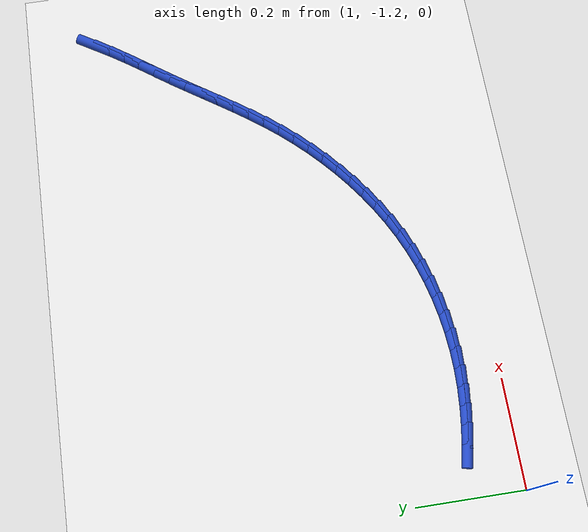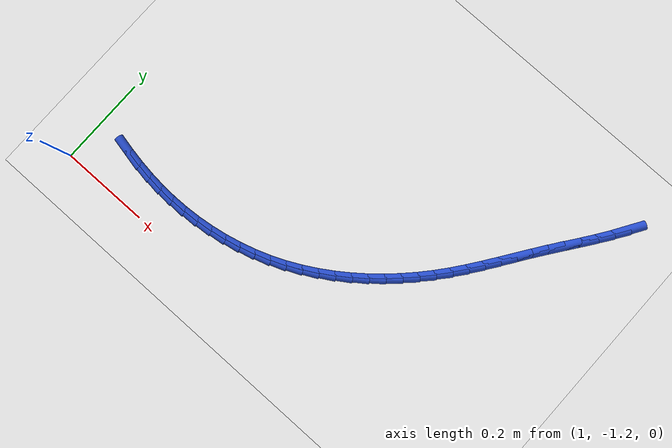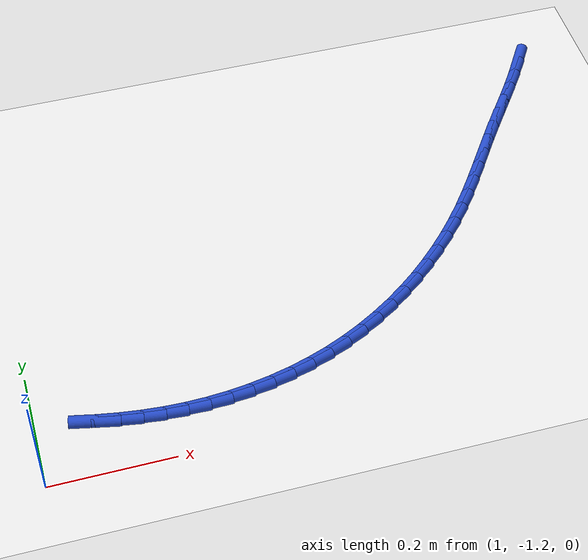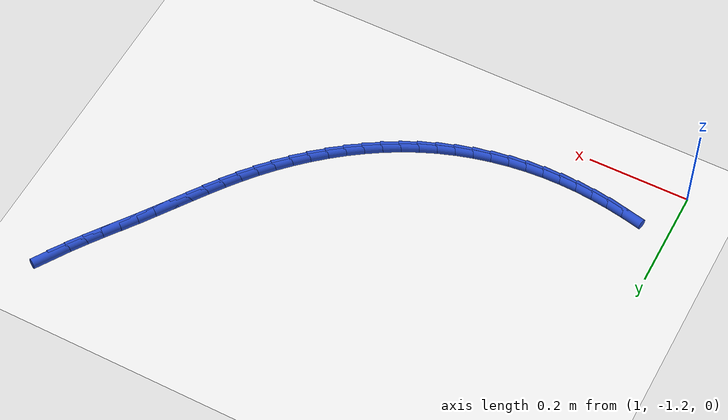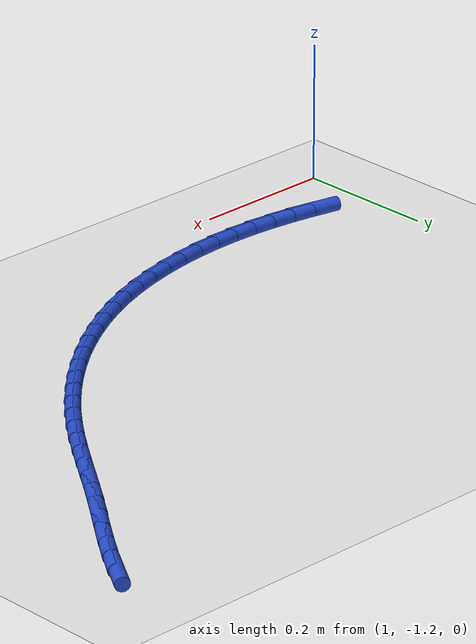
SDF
<sdf version="1.6">
 <world name="default">
  <model name="ground_plane">
   <static>1</static>
   <link name="link">
    <collision name="collision">
     <geometry><plane><normal>0 0 1</normal><size>100 100</size></plane></geometry>
     <surface><friction><ode><mu>100</mu><mu2>50</mu2></ode></friction></surface>
    </collision>
    <visual name="visual">
     <cast_shadows>0</cast_shadows>
     <geometry><plane><normal>0 0 1</normal><size>100 100</size></plane></geometry>
     <material>
      <script><uri>file://media/materials/scripts/gazebo.material</uri><name>Gazebo/WhiteGlow</name></script>
     </material>
    </visual>
   </link>
  </model>
  <model name="line">
   <link name="link_118">
    <pose>1.9889251273976312 -0.5340199341099804 0.01 0 1.57 1.0106707011554092</pose>
    <collision name="collision">
     <geometry><cylinder><radius>0.01</radius><length>0.08</length></cylinder></geometry>
    </collision>
    <visual name="visual">
     <material>
      <script><name>Gazebo/Blue</name><uri>file://media/materials/scripts/gazebo.material</uri></script>
     </material>
     <geometry><cylinder><radius>0.01</radius><length>0.08</length></cylinder></geometry>
    </visual>
   </link>
   <link name="link_119">
    <pose>1.9704287395510902 -0.5635138962584318 0.01 0 1.57 0.9747530778673968</pose>
    <collision name="collision">
     <geometry><cylinder><radius>0.01</radius><length>0.08</length></cylinder></geometry>
    </collision>
    <visual name="visual">
     <material>
      <script><name>Gazebo/Blue</name><uri>file://media/materials/scripts/gazebo.material</uri></script>
     </material>
     <geometry><cylinder><radius>0.01</radius><length>0.08</length></cylinder></geometry>
    </visual>
   </link>
   <link name="link_120">
    <pose>1.9505896850084274 -0.5927602093816582 0.01 0 1.57 0.9520366843837772</pose>
    <collision name="collision">
     <geometry><cylinder><radius>0.01</radius><length>0.08</length></cylinder></geometry>
    </collision>
    <visual name="visual">
     <material>
      <script><name>Gazebo/Blue</name><uri>file://media/materials/scripts/gazebo.material</uri></script>
     </material>
     <geometry><cylinder><radius>0.01</radius><length>0.08</length></cylinder></geometry>
    </visual>
   </link>
   <link name="link_121">
    <pose>1.9298991941028483 -0.6218183311903659 0.01 0 1.57 0.9417481838617856</pose>
    <collision name="collision">
     <geometry><cylinder><radius>0.01</radius><length>0.08</length></cylinder></geometry>
    </collision>
    <visual name="visual">
     <material>
      <script><name>Gazebo/Blue</name><uri>file://media/materials/scripts/gazebo.material</uri></script>
     </material>
     <geometry><cylinder><radius>0.01</radius><length>0.08</length></cylinder></geometry>
    </visual>
   </link>
   <link name="link_122">
    <pose>1.9088484971675541 -0.6507477193952603 0.01 0 1.57 0.9435769165240928</pose>
    <collision name="collision">
     <geometry><cylinder><radius>0.01</radius><length>0.08</length></cylinder></geometry>
    </collision>
    <visual name="visual">
     <material>
      <script><name>Gazebo/Blue</name><uri>file://media/materials/scripts/gazebo.material</uri></script>
     </material>
     <geometry><cylinder><radius>0.01</radius><length>0.08</length></cylinder></geometry>
    </visual>
   </link>
   <link name="link_123">
    <pose>1.8879288245357504 -0.6796078317070477 0.01 0 1.57 0.9564338454470598</pose>
    <collision name="collision">
     <geometry><cylinder><radius>0.01</radius><length>0.08</length></cylinder></geometry>
    </collision>
    <visual name="visual">
     <material>
      <script><name>Gazebo/Blue</name><uri>file://media/materials/scripts/gazebo.material</uri></script>
     </material>
     <geometry><cylinder><radius>0.01</radius><length>0.08</length></cylinder></geometry>
    </visual>
   </link>
   <link name="link_124">
    <pose>1.8675840369937082 -0.7084480033679937 0.01 0 1.57 0.9677847856604137</pose>
    <collision name="collision">
     <geometry><cylinder><radius>0.01</radius><length>0.08</length></cylinder></geometry>
    </collision>
    <visual name="visual">
     <material>
      <script><name>Gazebo/Blue</name><uri>file://media/materials/scripts/gazebo.material</uri></script>
     </material>
     <geometry><cylinder><radius>0.01</radius><length>0.08</length></cylinder></geometry>
    </visual>
   </link>
   <link name="link_125">
    <pose>1.8477762850292834 -0.737214632235295 0.01 0 1.57 0.9699103502248678</pose>
    <collision name="collision">
     <geometry><cylinder><radius>0.01</radius><length>0.08</length></cylinder></geometry>
    </collision>
    <visual name="visual">
     <material>
      <script><name>Gazebo/Blue</name><uri>file://media/materials/scripts/gazebo.material</uri></script>
     </material>
     <geometry><cylinder><radius>0.01</radius><length>0.08</length></cylinder></geometry>
    </visual>
   </link>
   <link name="link_126">
    <pose>1.8281868298088888 -0.7657940925122253 0.01 0 1.57 0.9624748226813783</pose>
    <collision name="collision">
     <geometry><cylinder><radius>0.01</radius><length>0.08</length></cylinder></geometry>
    </collision>
    <visual name="visual">
     <material>
      <script><name>Gazebo/Blue</name><uri>file://media/materials/scripts/gazebo.material</uri></script>
     </material>
     <geometry><cylinder><radius>0.01</radius><length>0.08</length></cylinder></geometry>
    </visual>
   </link>
   <link name="link_127">
    <pose>1.808493427676533 -0.794072009451383 0.01 0 1.57 0.9453811575352014</pose>
    <collision name="collision">
     <geometry><cylinder><radius>0.01</radius><length>0.08</length></cylinder></geometry>
    </collision>
    <visual name="visual">
     <material>
      <script><name>Gazebo/Blue</name><uri>file://media/materials/scripts/gazebo.material</uri></script>
     </material>
     <geometry><cylinder><radius>0.01</radius><length>0.08</length></cylinder></geometry>
    </visual>
   </link>
   <link name="link_128">
    <pose>1.7883738349762262 -0.8219340083053667 0.01 0 1.57 0.9187048293078196</pose>
    <collision name="collision">
     <geometry><cylinder><radius>0.01</radius><length>0.08</length></cylinder></geometry>
    </collision>
    <visual name="visual">
     <material>
      <script><name>Gazebo/Blue</name><uri>file://media/materials/scripts/gazebo.material</uri></script>
     </material>
     <geometry><cylinder><radius>0.01</radius><length>0.08</length></cylinder></geometry>
    </visual>
   </link>
   <link name="link_129">
    <pose>1.767505808051979 -0.8492657143267757 0.01 0 1.57 0.882898964438943</pose>
    <collision name="collision">
     <geometry><cylinder><radius>0.01</radius><length>0.08</length></cylinder></geometry>
    </collision>
    <visual name="visual">
     <material>
      <script><name>Gazebo/Blue</name><uri>file://media/materials/scripts/gazebo.material</uri></script>
     </material>
     <geometry><cylinder><radius>0.01</radius><length>0.08</length></cylinder></geometry>
    </visual>
   </link>
   <link name="link_130">
    <pose>1.7455742447512201 -0.875952704057479 0.01 0 1.57 0.8421838900116252</pose>
    <collision name="collision">
     <geometry><cylinder><radius>0.01</radius><length>0.08</length></cylinder></geometry>
    </collision>
    <visual name="visual">
     <material>
      <script><name>Gazebo/Blue</name><uri>file://media/materials/scripts/gazebo.material</uri></script>
     </material>
     <geometry><cylinder><radius>0.01</radius><length>0.08</length></cylinder></geometry>
    </visual>
   </link>
   <link name="link_131">
    <pose>1.7224367173904498 -0.9018793762622597 0.01 0 1.57 0.8004120279556134</pose>
    <collision name="collision">
     <geometry><cylinder><radius>0.01</radius><length>0.08</length></cylinder></geometry>
    </collision>
    <visual name="visual">
     <material>
      <script><name>Gazebo/Blue</name><uri>file://media/materials/scripts/gazebo.material</uri></script>
     </material>
     <geometry><cylinder><radius>0.01</radius><length>0.08</length></cylinder></geometry>
    </visual>
   </link>
   <link name="link_132">
    <pose>1.6981282841957885 -0.9269289191109611 0.01 0 1.57 0.7575092086211566</pose>
    <collision name="collision">
     <geometry><cylinder><radius>0.01</radius><length>0.08</length></cylinder></geometry>
    </collision>
    <visual name="visual">
     <material>
      <script><name>Gazebo/Blue</name><uri>file://media/materials/scripts/gazebo.material</uri></script>
     </material>
     <geometry><cylinder><radius>0.01</radius><length>0.08</length></cylinder></geometry>
    </visual>
   </link>
   <link name="link_133">
    <pose>1.672692107412745 -0.9509844654975764 0.01 0 1.57 0.7132292995489538</pose>
    <collision name="collision">
     <geometry><cylinder><radius>0.01</radius><length>0.08</length></cylinder></geometry>
    </collision>
    <visual name="visual">
     <material>
      <script><name>Gazebo/Blue</name><uri>file://media/materials/scripts/gazebo.material</uri></script>
     </material>
     <geometry><cylinder><radius>0.01</radius><length>0.08</length></cylinder></geometry>
    </visual>
   </link>
   <link name="link_134">
    <pose>1.6461713492868273 -0.9739291483160989 0.01 0 1.57 0.6673351766113088</pose>
    <collision name="collision">
     <geometry><cylinder><radius>0.01</radius><length>0.08</length></cylinder></geometry>
    </collision>
    <visual name="visual">
     <material>
      <script><name>Gazebo/Blue</name><uri>file://media/materials/scripts/gazebo.material</uri></script>
     </material>
     <geometry><cylinder><radius>0.01</radius><length>0.08</length></cylinder></geometry>
    </visual>
   </link>
   <link name="link_135">
    <pose>1.6186091720635432 -0.9956461004605205 0.01 0 1.57 0.6196010444729273</pose>
    <collision name="collision">
     <geometry><cylinder><radius>0.01</radius><length>0.08</length></cylinder></geometry>
    </collision>
    <visual name="visual">
     <material>
      <script><name>Gazebo/Blue</name><uri>file://media/materials/scripts/gazebo.material</uri></script>
     </material>
     <geometry><cylinder><radius>0.01</radius><length>0.08</length></cylinder></geometry>
    </visual>
   </link>
   <link name="link_136">
    <pose>1.590048737988401 -1.0160184548248345 0.01 0 1.57 0.5698165999526794</pose>
    <collision name="collision">
     <geometry><cylinder><radius>0.01</radius><length>0.08</length></cylinder></geometry>
    </collision>
    <visual name="visual">
     <material>
      <script><name>Gazebo/Blue</name><uri>file://media/materials/scripts/gazebo.material</uri></script>
     </material>
     <geometry><cylinder><radius>0.01</radius><length>0.08</length></cylinder></geometry>
    </visual>
   </link>
   <link name="link_137">
    <pose>1.560533209306909 -1.0349293443030336 0.01 0 1.57 0.5177932585880627</pose>
    <collision name="collision">
     <geometry><cylinder><radius>0.01</radius><length>0.08</length></cylinder></geometry>
    </collision>
    <visual name="visual">
     <material>
      <script><name>Gazebo/Blue</name><uri>file://media/materials/scripts/gazebo.material</uri></script>
     </material>
     <geometry><cylinder><radius>0.01</radius><length>0.08</length></cylinder></geometry>
    </visual>
   </link>
   <link name="link_138">
    <pose>1.5301057482645746 -1.0522619017891104 0.01 0 1.57 0.4633725939101715</pose>
    <collision name="collision">
     <geometry><cylinder><radius>0.01</radius><length>0.08</length></cylinder></geometry>
    </collision>
    <visual name="visual">
     <material>
      <script><name>Gazebo/Blue</name><uri>file://media/materials/scripts/gazebo.material</uri></script>
     </material>
     <geometry><cylinder><radius>0.01</radius><length>0.08</length></cylinder></geometry>
    </visual>
   </link>
   <link name="link_139">
    <pose>1.4988095171069062 -1.0678992601770578 0.01 0 1.57 0.40643727372554445</pose>
    <collision name="collision">
     <geometry><cylinder><radius>0.01</radius><length>0.08</length></cylinder></geometry>
    </collision>
    <visual name="visual">
     <material>
      <script><name>Gazebo/Blue</name><uri>file://media/materials/scripts/gazebo.material</uri></script>
     </material>
     <geometry><cylinder><radius>0.01</radius><length>0.08</length></cylinder></geometry>
    </visual>
   </link>
   <link name="link_140">
    <pose>1.4666876843615801 -1.0817245610733273 0.01 0 1.57 0.3478267587593689</pose>
    <collision name="collision">
     <geometry><cylinder><radius>0.01</radius><length>0.08</length></cylinder></geometry>
    </collision>
    <visual name="visual">
     <material>
      <script><name>Gazebo/Blue</name><uri>file://media/materials/scripts/gazebo.material</uri></script>
     </material>
     <geometry><cylinder><radius>0.01</radius><length>0.08</length></cylinder></geometry>
    </visual>
   </link>
   <link name="link_141">
    <pose>1.4338026457808686 -1.0936476114634295 0.01 0 1.57 0.29033173595656525</pose>
    <collision name="collision">
     <geometry><cylinder><radius>0.01</radius><length>0.08</length></cylinder></geometry>
    </collision>
    <visual name="visual">
     <material>
      <script><name>Gazebo/Blue</name><uri>file://media/materials/scripts/gazebo.material</uri></script>
     </material>
     <geometry><cylinder><radius>0.01</radius><length>0.08</length></cylinder></geometry>
    </visual>
   </link>
   <link name="link_142">
    <pose>1.4002784801995198 -1.1036637638450613 0.01 0 1.57 0.2343018847249116</pose>
    <collision name="collision">
     <geometry><cylinder><radius>0.01</radius><length>0.08</length></cylinder></geometry>
    </collision>
    <visual name="visual">
     <material>
      <script><name>Gazebo/Blue</name><uri>file://media/materials/scripts/gazebo.material</uri></script>
     </material>
     <geometry><cylinder><radius>0.01</radius><length>0.08</length></cylinder></geometry>
    </visual>
   </link>
   <link name="link_143">
    <pose>1.3662516109302203 -1.1117854907210354 0.01 0 1.57 0.17947278054771035</pose>
    <collision name="collision">
     <geometry><cylinder><radius>0.01</radius><length>0.08</length></cylinder></geometry>
    </collision>
    <visual name="visual">
     <material>
      <script><name>Gazebo/Blue</name><uri>file://media/materials/scripts/gazebo.material</uri></script>
     </material>
     <geometry><cylinder><radius>0.01</radius><length>0.08</length></cylinder></geometry>
    </visual>
   </link>
   <link name="link_144">
    <pose>1.3318584612856552 -1.1180252645941637 0.01 0 1.57 0.1255610896956478</pose>
    <collision name="collision">
     <geometry><cylinder><radius>0.01</radius><length>0.08</length></cylinder></geometry>
    </collision>
    <visual name="visual">
     <material>
      <script><name>Gazebo/Blue</name><uri>file://media/materials/scripts/gazebo.material</uri></script>
     </material>
     <geometry><cylinder><radius>0.01</radius><length>0.08</length></cylinder></geometry>
    </visual>
   </link>
   <link name="link_145">
    <pose>1.2972354545785094 -1.1223955579672587 0.01 0 1.57 0.07226859661278537</pose>
    <collision name="collision">
     <geometry><cylinder><radius>0.01</radius><length>0.08</length></cylinder></geometry>
    </collision>
    <visual name="visual">
     <material>
      <script><name>Gazebo/Blue</name><uri>file://media/materials/scripts/gazebo.material</uri></script>
     </material>
     <geometry><cylinder><radius>0.01</radius><length>0.08</length></cylinder></geometry>
    </visual>
   </link>
   <link name="link_146">
    <pose>1.262519014121469 -1.1249088433431331 0.01 0 1.57 0.019284696491934306</pose>
    <collision name="collision">
     <geometry><cylinder><radius>0.01</radius><length>0.08</length></cylinder></geometry>
    </collision>
    <visual name="visual">
     <material>
      <script><name>Gazebo/Blue</name><uri>file://media/materials/scripts/gazebo.material</uri></script>
     </material>
     <geometry><cylinder><radius>0.01</radius><length>0.08</length></cylinder></geometry>
    </visual>
   </link>
   <link name="link_147">
    <pose>1.2278455632272185 -1.1255775932245986 0.01 0 1.57 -0.03367461146650635</pose>
    <collision name="collision">
     <geometry><cylinder><radius>0.01</radius><length>0.08</length></cylinder></geometry>
    </collision>
    <visual name="visual">
     <material>
      <script><name>Gazebo/Blue</name><uri>file://media/materials/scripts/gazebo.material</uri></script>
     </material>
     <geometry><cylinder><radius>0.01</radius><length>0.08</length></cylinder></geometry>
    </visual>
   </link>
   <link name="link_148">
    <pose>1.193350206486551 -1.124415536206152 0.01 0 1.57 -0.08497358244691407</pose>
    <collision name="collision">
     <geometry><cylinder><radius>0.01</radius><length>0.08</length></cylinder></geometry>
    </collision>
    <visual name="visual">
     <material>
      <script><name>Gazebo/Blue</name><uri>file://media/materials/scripts/gazebo.material</uri></script>
     </material>
     <geometry><cylinder><radius>0.01</radius><length>0.08</length></cylinder></geometry>
    </visual>
   </link>
   <link name="link_149">
    <pose>1.1591029576728322 -1.1214984003341604 0.01 0 1.57 -0.13171441643599993</pose>
    <collision name="collision">
     <geometry><cylinder><radius>0.01</radius><length>0.08</length></cylinder></geometry>
    </collision>
    <visual name="visual">
     <material>
      <script><name>Gazebo/Blue</name><uri>file://media/materials/scripts/gazebo.material</uri></script>
     </material>
     <geometry><cylinder><radius>0.01</radius><length>0.08</length></cylinder></geometry>
    </visual>
   </link>
   <link name="link_150">
    <pose>1.1250802743535488 -1.1169910265853962 0.01 0 1.57 -0.1734122544859432</pose>
    <collision name="collision">
     <geometry><cylinder><radius>0.01</radius><length>0.08</length></cylinder></geometry>
    </collision>
    <visual name="visual">
     <material>
      <script><name>Gazebo/Blue</name><uri>file://media/materials/scripts/gazebo.material</uri></script>
     </material>
     <geometry><cylinder><radius>0.01</radius><length>0.08</length></cylinder></geometry>
    </visual>
   </link>
   <link name="link_151">
    <pose>1.0912513663744559 -1.1110651594414958 0.01 0 1.57 -0.20991416269737634</pose>
    <collision name="collision">
     <geometry><cylinder><radius>0.01</radius><length>0.08</length></cylinder></geometry>
    </collision>
    <visual name="visual">
     <material>
      <script><name>Gazebo/Blue</name><uri>file://media/materials/scripts/gazebo.material</uri></script>
     </material>
     <geometry><cylinder><radius>0.01</radius><length>0.08</length></cylinder></geometry>
    </visual>
   </link>
  </model>
 </world>
</sdf>
